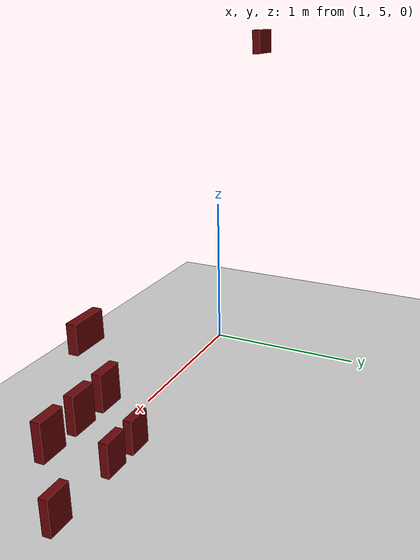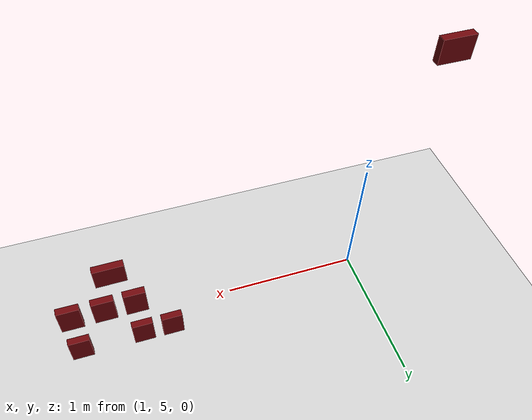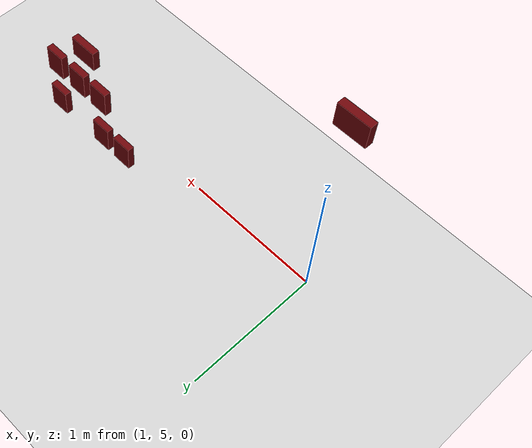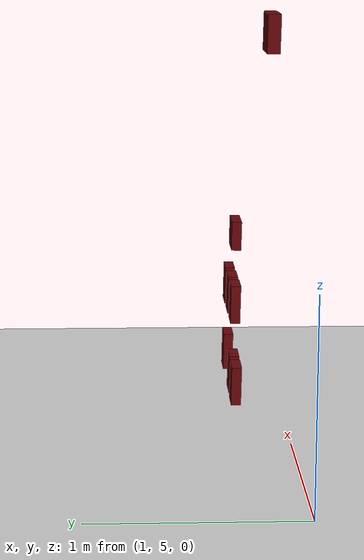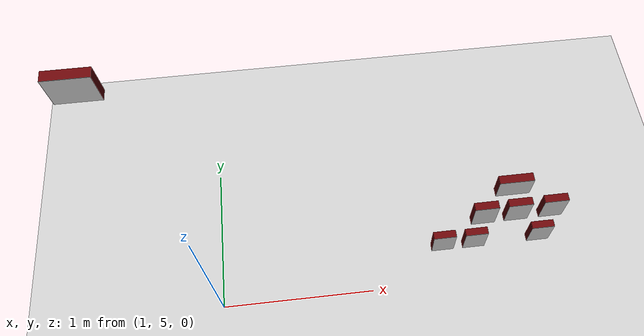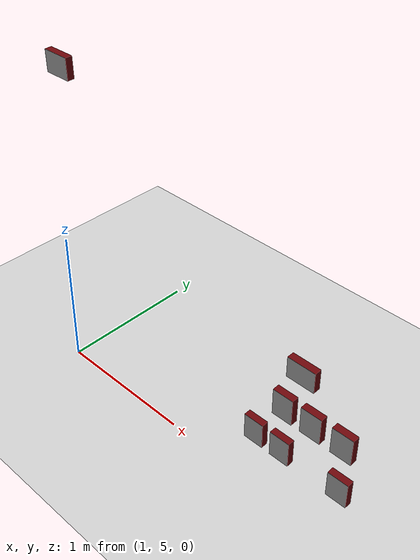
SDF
<sdf version="1.7">
 <world name="default">
  <model name="ground_plane">
   <static>1</static>
   <link name="link">
    <collision name="collision">
     <geometry><plane><normal>0 0 1</normal><size>100 100</size></plane></geometry>
     <surface><friction><ode><mu>100</mu><mu2>50</mu2></ode></friction></surface>
    </collision>
    <visual name="visual">
     <cast_shadows>0</cast_shadows>
     <geometry><plane><normal>0 0 1</normal><size>100 100</size></plane></geometry>
     <material>
      <script><uri>file://media/materials/scripts/gazebo.material</uri><name>Gazebo/Grey</name></script>
     </material>
    </visual>
   </link>
  </model>
  <model name="biscuit_box_clone_clone_clone_clone">
   <link name="link">
    <pose>0 0 0.025 0 -0 0</pose>
    <visual name="visual">
     <geometry><box><size>0.2 0.15 0.05</size></box></geometry>
     <material>
      <ambient>0.423 0.019 0.035 1</ambient>
      <diffuse>0.423 0.019 0.035 1</diffuse>
      <specular>0.01 0.01 0.01 1</specular>
      <emissive>0 0 0 1</emissive>
     </material>
    </visual>
    <collision name="collision"><geometry><box><size>0.1 0.1 0.15</size></box></geometry></collision>
   </link>
   <link name="link_1">
    <pose>0 0 0.05 0 -0 0</pose>
    <visual name="visual">
     <geometry><box><size>0.2 0.15 0.001</size></box></geometry>
     <material>
      <script>
       <uri>model://biscuit_box/materials/scripts</uri>
       <uri>model://biscuit_box/materials/textures</uri>
       <name>biscuit_pat</name>
      </script>
     </material>
    </visual>
    <collision name="collision"><geometry><box><size>0.1 0.1 0.15</size></box></geometry></collision>
   </link>
   <static>1</static>
   <pose>2.71586 5.2638 0.162905 -2.92419 -1.54924 -1.78824</pose>
  </model>
  <model name="biscuit_box_clone_clone_clone_clone_clone">
   <link name="link">
    <pose>0 0 0.025 0 -0 0</pose>
    <visual name="visual">
     <geometry><box><size>0.2 0.15 0.05</size></box></geometry>
     <material>
      <ambient>0.423 0.019 0.035 1</ambient>
      <diffuse>0.423 0.019 0.035 1</diffuse>
      <specular>0.01 0.01 0.01 1</specular>
      <emissive>0 0 0 1</emissive>
     </material>
    </visual>
    <collision name="collision"><geometry><box><size>0.1 0.1 0.15</size></box></geometry></collision>
   </link>
   <link name="link_1">
    <pose>0 0 0.05 0 -0 0</pose>
    <visual name="visual">
     <geometry><box><size>0.2 0.15 0.001</size></box></geometry>
     <material>
      <script>
       <uri>model://biscuit_box/materials/scripts</uri>
       <uri>model://biscuit_box/materials/textures</uri>
       <name>biscuit_pat</name>
      </script>
     </material>
    </visual>
    <collision name="collision"><geometry><box><size>0.1 0.1 0.15</size></box></geometry></collision>
   </link>
   <static>1</static>
   <pose>2.50305 5.26523 0.162905 -2.92419 -1.54924 -1.78824</pose>
  </model>
  <model name="biscuit_box_clone_clone_clone_clone_clone_1_clone">
   <link name="link">
    <pose>0 0 0.025 0 -0 0</pose>
    <visual name="visual">
     <geometry><box><size>0.2 0.15 0.05</size></box></geometry>
     <material>
      <ambient>0.423 0.019 0.035 1</ambient>
      <diffuse>0.423 0.019 0.035 1</diffuse>
      <specular>0.01 0.01 0.01 1</specular>
      <emissive>0 0 0 1</emissive>
     </material>
    </visual>
    <collision name="collision"><geometry><box><size>0.1 0.1 0.15</size></box></geometry></collision>
   </link>
   <link name="link_1">
    <pose>0 0 0.05 0 -0 0</pose>
    <visual name="visual">
     <geometry><box><size>0.2 0.15 0.001</size></box></geometry>
     <material>
      <script>
       <uri>model://biscuit_box/materials/scripts</uri>
       <uri>model://biscuit_box/materials/textures</uri>
       <name>biscuit_pat</name>
      </script>
     </material>
    </visual>
    <collision name="collision"><geometry><box><size>0.1 0.1 0.15</size></box></geometry></collision>
   </link>
   <static>1</static>
   <pose>2.93026 5.25848 0.541315 -2.92419 -1.54924 -1.78824</pose>
  </model>
  <model name="biscuit_box_clone_clone_clone_clone_clone_1_clone_clone">
   <link name="link">
    <pose>0 0 0.025 0 -0 0</pose>
    <visual name="visual">
     <geometry><box><size>0.2 0.15 0.05</size></box></geometry>
     <material>
      <ambient>0.423 0.019 0.035 1</ambient>
      <diffuse>0.423 0.019 0.035 1</diffuse>
      <specular>0.01 0.01 0.01 1</specular>
      <emissive>0 0 0 1</emissive>
     </material>
    </visual>
    <collision name="collision"><geometry><box><size>0.1 0.1 0.15</size></box></geometry></collision>
   </link>
   <link name="link_1">
    <pose>0 0 0.05 0 -0 0</pose>
    <visual name="visual">
     <geometry><box><size>0.2 0.15 0.001</size></box></geometry>
     <material>
      <script>
       <uri>model://biscuit_box/materials/scripts</uri>
       <uri>model://biscuit_box/materials/textures</uri>
       <name>biscuit_pat</name>
      </script>
     </material>
    </visual>
    <collision name="collision"><geometry><box><size>0.1 0.1 0.15</size></box></geometry></collision>
   </link>
   <static>1</static>
   <pose>3.1536 5.26061 0.541315 -2.92419 -1.54924 -1.78824</pose>
  </model>
  <model name="biscuit_box_clone_clone_clone_clone_clone_0_clone">
   <link name="link">
    <pose>0 0 0.025 0 -0 0</pose>
    <visual name="visual">
     <geometry><box><size>0.2 0.15 0.05</size></box></geometry>
     <material>
      <ambient>0.423 0.019 0.035 1</ambient>
      <diffuse>0.423 0.019 0.035 1</diffuse>
      <specular>0.01 0.01 0.01 1</specular>
      <emissive>0 0 0 1</emissive>
     </material>
    </visual>
    <collision name="collision"><geometry><box><size>0.1 0.1 0.15</size></box></geometry></collision>
   </link>
   <link name="link_1">
    <pose>0 0 0.05 0 -0 0</pose>
    <visual name="visual">
     <geometry><box><size>0.2 0.15 0.001</size></box></geometry>
     <material>
      <script>
       <uri>model://biscuit_box/materials/scripts</uri>
       <uri>model://biscuit_box/materials/textures</uri>
       <name>biscuit_pat</name>
      </script>
     </material>
    </visual>
    <collision name="collision"><geometry><box><size>0.1 0.1 0.15</size></box></geometry></collision>
   </link>
   <static>1</static>
   <pose>3.16156 5.26581 0.162905 -2.92419 -1.54924 -1.78824</pose>
  </model>
  <model name="biscuit_box_clone_clone_clone_clone_clone_1_clone_clone_0">
   <link name="link">
    <pose>0 0 0.025 0 -0 0</pose>
    <visual name="visual">
     <geometry><box><size>0.2 0.15 0.05</size></box></geometry>
     <material>
      <ambient>0.423 0.019 0.035 1</ambient>
      <diffuse>0.423 0.019 0.035 1</diffuse>
      <specular>0.01 0.01 0.01 1</specular>
      <emissive>0 0 0 1</emissive>
     </material>
    </visual>
    <collision name="collision"><geometry><box><size>0.1 0.1 0.15</size></box></geometry></collision>
   </link>
   <link name="link_1">
    <pose>0 0 0.05 0 -0 0</pose>
    <visual name="visual">
     <geometry><box><size>0.2 0.15 0.001</size></box></geometry>
     <material>
      <script>
       <uri>model://biscuit_box/materials/scripts</uri>
       <uri>model://biscuit_box/materials/textures</uri>
       <name>biscuit_pat</name>
      </script>
     </material>
    </visual>
    <collision name="collision"><geometry><box><size>0.1 0.1 0.15</size></box></geometry></collision>
   </link>
   <static>1</static>
   <pose>2.71958 5.25709 0.541315 -2.92419 -1.54924 -1.78824</pose>
  </model>
  <model name="biscuit_box_clone_0_clone_0_clone_3">
   <link name="link">
    <pose>0 0 0.025 0 -0 0</pose>
    <visual name="visual">
     <geometry><box><size>0.2 0.15 0.05</size></box></geometry>
     <material>
      <ambient>0.423 0.019 0.035 1</ambient>
      <diffuse>0.423 0.019 0.035 1</diffuse>
      <specular>0.01 0.01 0.01 1</specular>
      <emissive>0 0 0 1</emissive>
     </material>
    </visual>
    <collision name="collision"><geometry><box><size>0.1 0.1 0.15</size></box></geometry></collision>
   </link>
   <link name="link_1">
    <pose>0 0 0.05 0 -0 0</pose>
    <visual name="visual">
     <geometry><box><size>0.2 0.15 0.001</size></box></geometry>
     <material>
      <script>
       <uri>model://biscuit_box/materials/scripts</uri>
       <uri>model://biscuit_box/materials/textures</uri>
       <name>biscuit_pat</name>
      </script>
     </material>
    </visual>
    <collision name="collision"><geometry><box><size>0.1 0.1 0.15</size></box></geometry></collision>
   </link>
   <static>1</static>
   <pose>0.795301 5.25875 2.09346 1.59184 -0 0</pose>
  </model>
  <model name="biscuit_box_clone_0_clone_0_clone_clone_0">
   <link name="link">
    <pose>0 0 0.025 0 -0 0</pose>
    <visual name="visual">
     <geometry><box><size>0.2 0.15 0.05</size></box></geometry>
     <material>
      <ambient>0.423 0.019 0.035 1</ambient>
      <diffuse>0.423 0.019 0.035 1</diffuse>
      <specular>0.01 0.01 0.01 1</specular>
      <emissive>0 0 0 1</emissive>
     </material>
    </visual>
    <collision name="collision"><geometry><box><size>0.1 0.1 0.15</size></box></geometry></collision>
   </link>
   <link name="link_1">
    <pose>0 0 0.05 0 -0 0</pose>
    <visual name="visual">
     <geometry><box><size>0.2 0.15 0.001</size></box></geometry>
     <material>
      <script>
       <uri>model://biscuit_box/materials/scripts</uri>
       <uri>model://biscuit_box/materials/textures</uri>
       <name>biscuit_pat</name>
      </script>
     </material>
    </visual>
    <collision name="collision"><geometry><box><size>0.1 0.1 0.15</size></box></geometry></collision>
   </link>
   <static>1</static>
   <pose>2.834 5.24883 0.888325 1.59184 -0 0</pose>
  </model>
 </world>
</sdf>
